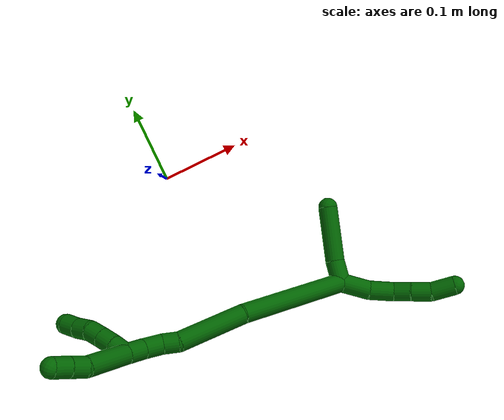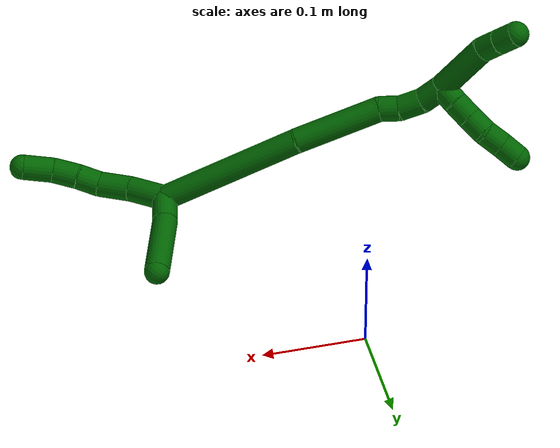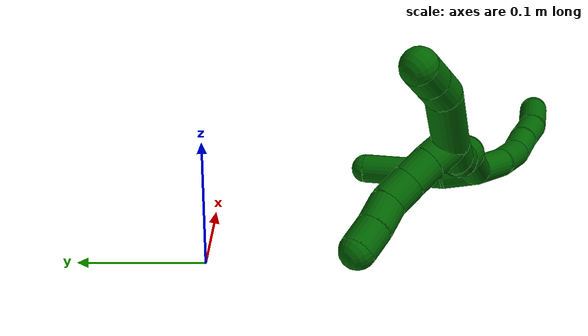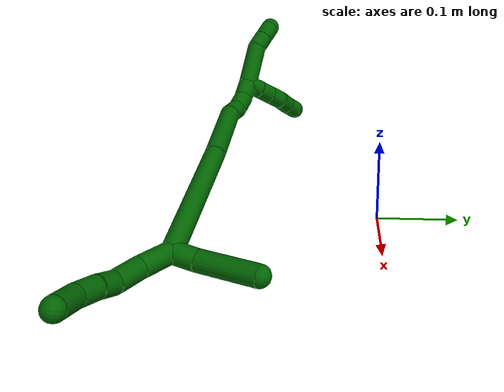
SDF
<sdf version="1.7">
 <world name="default">
  <model name="6">
   <static>0</static>
   <link name="6">
    <collision name="collision-cylinder-e_1_2_8">
     <pose>0.001867 0.008511 -0.016853 -2.67395 0.098553 -0.408341</pose>
     <geometry><cylinder><radius>0.0125</radius><length>0.037944</length></cylinder></geometry>
     <surface>
      <friction><ode><mu>1.16</mu><mu2>1.16</mu2><slip1>0</slip1><slip2>0</slip2></ode></friction>
      <contact><ode><kp>1e+06</kp><kd>1</kd><max_vel>0</max_vel><min_depth>0.001</min_depth></ode></contact>
     </surface>
    </collision>
    <visual name="visual-cylinder-e_1_2_8">
     <pose>0.001867 0.008511 -0.016853 -2.67395 0.098553 -0.408341</pose>
     <geometry><cylinder><radius>0.0125</radius><length>0.037944</length></cylinder></geometry>
     <material><ambient>0 0.392157 0.003922 1</ambient></material>
    </visual>
    <collision name="collision-cylinder-e_2_8_9">
     <pose>0.008663 0.023347 -0.048098 -2.72748 0.303882 -1.25974</pose>
     <geometry><cylinder><radius>0.0125</radius><length>0.032951</length></cylinder></geometry>
     <surface>
      <friction><ode><mu>1.16</mu><mu2>1.16</mu2><slip1>0</slip1><slip2>0</slip2></ode></friction>
      <contact><ode><kp>1e+06</kp><kd>1</kd><max_vel>0</max_vel><min_depth>0.001</min_depth></ode></contact>
     </surface>
    </collision>
    <visual name="visual-cylinder-e_2_8_9">
     <pose>0.008663 0.023347 -0.048098 -2.72748 0.303882 -1.25974</pose>
     <geometry><cylinder><radius>0.0125</radius><length>0.032951</length></cylinder></geometry>
     <material><ambient>0 0.392157 0.003922 1</ambient></material>
    </visual>
    <collision name="collision-cylinder-e_3_9_10">
     <pose>0.017639 0.030406 -0.072995 -3.07188 0.366765 -2.76992</pose>
     <geometry><cylinder><radius>0.0125</radius><length>0.022564</length></cylinder></geometry>
     <surface>
      <friction><ode><mu>1.16</mu><mu2>1.16</mu2><slip1>0</slip1><slip2>0</slip2></ode></friction>
      <contact><ode><kp>1e+06</kp><kd>1</kd><max_vel>0</max_vel><min_depth>0.001</min_depth></ode></contact>
     </surface>
    </collision>
    <visual name="visual-cylinder-e_3_9_10">
     <pose>0.017639 0.030406 -0.072995 -3.07188 0.366765 -2.76992</pose>
     <geometry><cylinder><radius>0.0125</radius><length>0.022564</length></cylinder></geometry>
     <material><ambient>0 0.392157 0.003922 1</ambient></material>
    </visual>
    <collision name="collision-cylinder-e_4_10_11">
     <pose>0.026232 0.033649 -0.095268 -2.93152 0.361364 -2.09474</pose>
     <geometry><cylinder><radius>0.0125</radius><length>0.025723</length></cylinder></geometry>
     <surface>
      <friction><ode><mu>1.16</mu><mu2>1.16</mu2><slip1>0</slip1><slip2>0</slip2></ode></friction>
      <contact><ode><kp>1e+06</kp><kd>1</kd><max_vel>0</max_vel><min_depth>0.001</min_depth></ode></contact>
     </surface>
    </collision>
    <visual name="visual-cylinder-e_4_10_11">
     <pose>0.026232 0.033649 -0.095268 -2.93152 0.361364 -2.09474</pose>
     <geometry><cylinder><radius>0.0125</radius><length>0.025723</length></cylinder></geometry>
     <material><ambient>0 0.392157 0.003922 1</ambient></material>
    </visual>
    <collision name="collision-cylinder-e_5_11_6">
     <pose>0.039982 0.037608 -0.119308 -3.02396 0.640028 -2.78989</pose>
     <geometry><cylinder><radius>0.0125</radius><length>0.030819</length></cylinder></geometry>
     <surface>
      <friction><ode><mu>1.16</mu><mu2>1.16</mu2><slip1>0</slip1><slip2>0</slip2></ode></friction>
      <contact><ode><kp>1e+06</kp><kd>1</kd><max_vel>0</max_vel><min_depth>0.001</min_depth></ode></contact>
     </surface>
    </collision>
    <visual name="visual-cylinder-e_5_11_6">
     <pose>0.039982 0.037608 -0.119308 -3.02396 0.640028 -2.78989</pose>
     <geometry><cylinder><radius>0.0125</radius><length>0.030819</length></cylinder></geometry>
     <material><ambient>0 0.392157 0.003922 1</ambient></material>
    </visual>
    <collision name="collision-cylinder-e_1_2_12">
     <pose>0.011595 -0.000614 0.00863 0.071016 0.929753 0.035628</pose>
     <geometry><cylinder><radius>0.0125</radius><length>0.028935</length></cylinder></geometry>
     <surface>
      <friction><ode><mu>1.16</mu><mu2>1.16</mu2><slip1>0</slip1><slip2>0</slip2></ode></friction>
      <contact><ode><kp>1e+06</kp><kd>1</kd><max_vel>0</max_vel><min_depth>0.001</min_depth></ode></contact>
     </surface>
    </collision>
    <visual name="visual-cylinder-e_1_2_12">
     <pose>0.011595 -0.000614 0.00863 0.071016 0.929753 0.035628</pose>
     <geometry><cylinder><radius>0.0125</radius><length>0.028935</length></cylinder></geometry>
     <material><ambient>0 0.392157 0.003922 1</ambient></material>
    </visual>
    <collision name="collision-cylinder-e_2_12_5">
     <pose>0.054421 -0.006918 0.033223 0.342449 1.07363 0.205088</pose>
     <geometry><cylinder><radius>0.0125</radius><length>0.071065</length></cylinder></geometry>
     <surface>
      <friction><ode><mu>1.16</mu><mu2>1.16</mu2><slip1>0</slip1><slip2>0</slip2></ode></friction>
      <contact><ode><kp>1e+06</kp><kd>1</kd><max_vel>0</max_vel><min_depth>0.001</min_depth></ode></contact>
     </surface>
    </collision>
    <visual name="visual-cylinder-e_2_12_5">
     <pose>0.054421 -0.006918 0.033223 0.342449 1.07363 0.205088</pose>
     <geometry><cylinder><radius>0.0125</radius><length>0.071065</length></cylinder></geometry>
     <material><ambient>0 0.392157 0.003922 1</ambient></material>
    </visual>
    <collision name="collision-cylinder-e_1_2_13">
     <pose>-0.039492 -0.049151 0.036458 0.932584 -0.573092 -0.294459</pose>
     <geometry><cylinder><radius>0.0125</radius><length>0.145666</length></cylinder></geometry>
     <surface>
      <friction><ode><mu>1.16</mu><mu2>1.16</mu2><slip1>0</slip1><slip2>0</slip2></ode></friction>
      <contact><ode><kp>1e+06</kp><kd>1</kd><max_vel>0</max_vel><min_depth>0.001</min_depth></ode></contact>
     </surface>
    </collision>
    <visual name="visual-cylinder-e_1_2_13">
     <pose>-0.039492 -0.049151 0.036458 0.932584 -0.573092 -0.294459</pose>
     <geometry><cylinder><radius>0.0125</radius><length>0.145666</length></cylinder></geometry>
     <material><ambient>0 0.392157 0.003922 1</ambient></material>
    </visual>
    <collision name="collision-cylinder-e_2_13_14">
     <pose>-0.107218 -0.121819 0.095438 0.807045 -0.714317 -0.315989</pose>
     <geometry><cylinder><radius>0.0125</radius><length>0.086197</length></cylinder></geometry>
     <surface>
      <friction><ode><mu>1.16</mu><mu2>1.16</mu2><slip1>0</slip1><slip2>0</slip2></ode></friction>
      <contact><ode><kp>1e+06</kp><kd>1</kd><max_vel>0</max_vel><min_depth>0.001</min_depth></ode></contact>
     </surface>
    </collision>
    <visual name="visual-cylinder-e_2_13_14">
     <pose>-0.107218 -0.121819 0.095438 0.807045 -0.714317 -0.315989</pose>
     <geometry><cylinder><radius>0.0125</radius><length>0.086197</length></cylinder></geometry>
     <material><ambient>0 0.392157 0.003922 1</ambient></material>
    </visual>
    <collision name="collision-cylinder-e_3_14_15">
     <pose>-0.140098 -0.149599 0.125724 0.501988 -0.483122 -0.126172</pose>
     <geometry><cylinder><radius>0.0125</radius><length>0.020003</length></cylinder></geometry>
     <surface>
      <friction><ode><mu>1.16</mu><mu2>1.16</mu2><slip1>0</slip1><slip2>0</slip2></ode></friction>
      <contact><ode><kp>1e+06</kp><kd>1</kd><max_vel>0</max_vel><min_depth>0.001</min_depth></ode></contact>
     </surface>
    </collision>
    <visual name="visual-cylinder-e_3_14_15">
     <pose>-0.140098 -0.149599 0.125724 0.501988 -0.483122 -0.126172</pose>
     <geometry><cylinder><radius>0.0125</radius><length>0.020003</length></cylinder></geometry>
     <material><ambient>0 0.392157 0.003922 1</ambient></material>
    </visual>
    <collision name="collision-cylinder-e_4_15_16">
     <pose>-0.150802 -0.161647 0.140209 0.858635 -0.532235 -0.248291</pose>
     <geometry><cylinder><radius>0.0125</radius><length>0.023874</length></cylinder></geometry>
     <surface>
      <friction><ode><mu>1.16</mu><mu2>1.16</mu2><slip1>0</slip1><slip2>0</slip2></ode></friction>
      <contact><ode><kp>1e+06</kp><kd>1</kd><max_vel>0</max_vel><min_depth>0.001</min_depth></ode></contact>
     </surface>
    </collision>
    <visual name="visual-cylinder-e_4_15_16">
     <pose>-0.150802 -0.161647 0.140209 0.858635 -0.532235 -0.248291</pose>
     <geometry><cylinder><radius>0.0125</radius><length>0.023874</length></cylinder></geometry>
     <material><ambient>0 0.392157 0.003922 1</ambient></material>
    </visual>
    <collision name="collision-cylinder-e_5_16_1">
     <pose>-0.16202 -0.179651 0.150944 1.19655 -0.439417 -0.302104</pose>
     <geometry><cylinder><radius>0.0125</radius><length>0.02426</length></cylinder></geometry>
     <surface>
      <friction><ode><mu>1.16</mu><mu2>1.16</mu2><slip1>0</slip1><slip2>0</slip2></ode></friction>
      <contact><ode><kp>1e+06</kp><kd>1</kd><max_vel>0</max_vel><min_depth>0.001</min_depth></ode></contact>
     </surface>
    </collision>
    <visual name="visual-cylinder-e_5_16_1">
     <pose>-0.16202 -0.179651 0.150944 1.19655 -0.439417 -0.302104</pose>
     <geometry><cylinder><radius>0.0125</radius><length>0.02426</length></cylinder></geometry>
     <material><ambient>0 0.392157 0.003922 1</ambient></material>
    </visual>
    <collision name="collision-cylinder-e_1_1_17">
     <pose>-0.17809 -0.216574 0.161016 1.34771 -0.379099 -0.304042</pose>
     <geometry><cylinder><radius>0.0125</radius><length>0.058955</length></cylinder></geometry>
     <surface>
      <friction><ode><mu>1.16</mu><mu2>1.16</mu2><slip1>0</slip1><slip2>0</slip2></ode></friction>
      <contact><ode><kp>1e+06</kp><kd>1</kd><max_vel>0</max_vel><min_depth>0.001</min_depth></ode></contact>
     </surface>
    </collision>
    <visual name="visual-cylinder-e_1_1_17">
     <pose>-0.17809 -0.216574 0.161016 1.34771 -0.379099 -0.304042</pose>
     <geometry><cylinder><radius>0.0125</radius><length>0.058955</length></cylinder></geometry>
     <material><ambient>0 0.392157 0.003922 1</ambient></material>
    </visual>
    <collision name="collision-cylinder-e_2_17_18">
     <pose>-0.191126 -0.252046 0.171756 1.08031 -0.210862 -0.126743</pose>
     <geometry><cylinder><radius>0.0125</radius><length>0.020326</length></cylinder></geometry>
     <surface>
      <friction><ode><mu>1.16</mu><mu2>1.16</mu2><slip1>0</slip1><slip2>0</slip2></ode></friction>
      <contact><ode><kp>1e+06</kp><kd>1</kd><max_vel>0</max_vel><min_depth>0.001</min_depth></ode></contact>
     </surface>
    </collision>
    <visual name="visual-cylinder-e_2_17_18">
     <pose>-0.191126 -0.252046 0.171756 1.08031 -0.210862 -0.126743</pose>
     <geometry><cylinder><radius>0.0125</radius><length>0.020326</length></cylinder></geometry>
     <material><ambient>0 0.392157 0.003922 1</ambient></material>
    </visual>
    <collision name="collision-cylinder-e_3_18_4">
     <pose>-0.195633 -0.269654 0.181284 1.06931 -0.231791 -0.137664</pose>
     <geometry><cylinder><radius>0.0125</radius><length>0.02072</length></cylinder></geometry>
     <surface>
      <friction><ode><mu>1.16</mu><mu2>1.16</mu2><slip1>0</slip1><slip2>0</slip2></ode></friction>
      <contact><ode><kp>1e+06</kp><kd>1</kd><max_vel>0</max_vel><min_depth>0.001</min_depth></ode></contact>
     </surface>
    </collision>
    <visual name="visual-cylinder-e_3_18_4">
     <pose>-0.195633 -0.269654 0.181284 1.06931 -0.231791 -0.137664</pose>
     <geometry><cylinder><radius>0.0125</radius><length>0.02072</length></cylinder></geometry>
     <material><ambient>0 0.392157 0.003922 1</ambient></material>
    </visual>
    <collision name="collision-cylinder-e_1_1_19">
     <pose>-0.165647 -0.188779 0.164779 -0.110422 0.15397 -0.008526</pose>
     <geometry><cylinder><radius>0.0125</radius><length>0.02</length></cylinder></geometry>
     <surface>
      <friction><ode><mu>1.16</mu><mu2>1.16</mu2><slip1>0</slip1><slip2>0</slip2></ode></friction>
      <contact><ode><kp>1e+06</kp><kd>1</kd><max_vel>0</max_vel><min_depth>0.001</min_depth></ode></contact>
     </surface>
    </collision>
    <visual name="visual-cylinder-e_1_1_19">
     <pose>-0.165647 -0.188779 0.164779 -0.110422 0.15397 -0.008526</pose>
     <geometry><cylinder><radius>0.0125</radius><length>0.02</length></cylinder></geometry>
     <material><ambient>0 0.392157 0.003922 1</ambient></material>
    </visual>
    <collision name="collision-cylinder-e_2_19_20">
     <pose>-0.163226 -0.186345 0.18447 -0.135543 0.088868 -0.006036</pose>
     <geometry><cylinder><radius>0.0125</radius><length>0.02</length></cylinder></geometry>
     <surface>
      <friction><ode><mu>1.16</mu><mu2>1.16</mu2><slip1>0</slip1><slip2>0</slip2></ode></friction>
      <contact><ode><kp>1e+06</kp><kd>1</kd><max_vel>0</max_vel><min_depth>0.001</min_depth></ode></contact>
     </surface>
    </collision>
    <visual name="visual-cylinder-e_2_19_20">
     <pose>-0.163226 -0.186345 0.18447 -0.135543 0.088868 -0.006036</pose>
     <geometry><cylinder><radius>0.0125</radius><length>0.02</length></cylinder></geometry>
     <material><ambient>0 0.392157 0.003922 1</ambient></material>
    </visual>
    <collision name="collision-cylinder-e_3_20_21">
     <pose>-0.161721 -0.183725 0.204238 -0.127991 0.061734 -0.003957</pose>
     <geometry><cylinder><radius>0.0125</radius><length>0.02</length></cylinder></geometry>
     <surface>
      <friction><ode><mu>1.16</mu><mu2>1.16</mu2><slip1>0</slip1><slip2>0</slip2></ode></friction>
      <contact><ode><kp>1e+06</kp><kd>1</kd><max_vel>0</max_vel><min_depth>0.001</min_depth></ode></contact>
     </surface>
    </collision>
    <visual name="visual-cylinder-e_3_20_21">
     <pose>-0.161721 -0.183725 0.204238 -0.127991 0.061734 -0.003957</pose>
     <geometry><cylinder><radius>0.0125</radius><length>0.02</length></cylinder></geometry>
     <material><ambient>0 0.392157 0.003922 1</ambient></material>
    </visual>
    <collision name="collision-cylinder-e_4_21_22">
     <pose>-0.163144 -0.180376 0.223705 -0.213538 -0.205415 0.022093</pose>
     <geometry><cylinder><radius>0.0125</radius><length>0.02</length></cylinder></geometry>
     <surface>
      <friction><ode><mu>1.16</mu><mu2>1.16</mu2><slip1>0</slip1><slip2>0</slip2></ode></friction>
      <contact><ode><kp>1e+06</kp><kd>1</kd><max_vel>0</max_vel><min_depth>0.001</min_depth></ode></contact>
     </surface>
    </collision>
    <visual name="visual-cylinder-e_4_21_22">
     <pose>-0.163144 -0.180376 0.223705 -0.213538 -0.205415 0.022093</pose>
     <geometry><cylinder><radius>0.0125</radius><length>0.02</length></cylinder></geometry>
     <material><ambient>0 0.392157 0.003922 1</ambient></material>
    </visual>
    <collision name="collision-cylinder-e_5_22_3">
     <pose>-0.166225 -0.176708 0.243089 -0.160865 -0.104338 0.008418</pose>
     <geometry><cylinder><radius>0.0125</radius><length>0.02</length></cylinder></geometry>
     <surface>
      <friction><ode><mu>1.16</mu><mu2>1.16</mu2><slip1>0</slip1><slip2>0</slip2></ode></friction>
      <contact><ode><kp>1e+06</kp><kd>1</kd><max_vel>0</max_vel><min_depth>0.001</min_depth></ode></contact>
     </surface>
    </collision>
    <visual name="visual-cylinder-e_5_22_3">
     <pose>-0.166225 -0.176708 0.243089 -0.160865 -0.104338 0.008418</pose>
     <geometry><cylinder><radius>0.0125</radius><length>0.02</length></cylinder></geometry>
     <material><ambient>0 0.392157 0.003922 1</ambient></material>
    </visual>
    <collision name="collision-sphere-3">
     <pose>-0.167267 -0.175115 0.252907 0 -0 0</pose>
     <geometry><sphere><radius>0.0125</radius></sphere></geometry>
     <surface>
      <friction><ode><mu>1.16</mu><mu2>1.16</mu2><slip1>0</slip1><slip2>0</slip2></ode></friction>
      <contact><ode><kp>1e+06</kp><kd>1</kd><max_vel>0</max_vel><min_depth>0.001</min_depth></ode></contact>
     </surface>
    </collision>
    <visual name="visual-sphere-3">
     <pose>-0.167267 -0.175115 0.252907 0 -0 0</pose>
     <geometry><sphere><radius>0.0125</radius></sphere></geometry>
     <material><ambient>0 0.392157 0.003922 1</ambient></material>
    </visual>
    <collision name="collision-sphere-22">
     <pose>-0.165184 -0.178301 0.233272 0 -0 0</pose>
     <geometry><sphere><radius>0.0125</radius></sphere></geometry>
     <surface>
      <friction><ode><mu>1.16</mu><mu2>1.16</mu2><slip1>0</slip1><slip2>0</slip2></ode></friction>
      <contact><ode><kp>1e+06</kp><kd>1</kd><max_vel>0</max_vel><min_depth>0.001</min_depth></ode></contact>
     </surface>
    </collision>
    <visual name="visual-sphere-22">
     <pose>-0.165184 -0.178301 0.233272 0 -0 0</pose>
     <geometry><sphere><radius>0.0125</radius></sphere></geometry>
     <material><ambient>0 0.392157 0.003922 1</ambient></material>
    </visual>
    <collision name="collision-sphere-21">
     <pose>-0.161104 -0.182451 0.214137 0 -0 0</pose>
     <geometry><sphere><radius>0.0125</radius></sphere></geometry>
     <surface>
      <friction><ode><mu>1.16</mu><mu2>1.16</mu2><slip1>0</slip1><slip2>0</slip2></ode></friction>
      <contact><ode><kp>1e+06</kp><kd>1</kd><max_vel>0</max_vel><min_depth>0.001</min_depth></ode></contact>
     </surface>
    </collision>
    <visual name="visual-sphere-21">
     <pose>-0.161104 -0.182451 0.214137 0 -0 0</pose>
     <geometry><sphere><radius>0.0125</radius></sphere></geometry>
     <material><ambient>0 0.392157 0.003922 1</ambient></material>
    </visual>
    <collision name="collision-sphere-20">
     <pose>-0.162338 -0.184999 0.194339 0 -0 0</pose>
     <geometry><sphere><radius>0.0125</radius></sphere></geometry>
     <surface>
      <friction><ode><mu>1.16</mu><mu2>1.16</mu2><slip1>0</slip1><slip2>0</slip2></ode></friction>
      <contact><ode><kp>1e+06</kp><kd>1</kd><max_vel>0</max_vel><min_depth>0.001</min_depth></ode></contact>
     </surface>
    </collision>
    <visual name="visual-sphere-20">
     <pose>-0.162338 -0.184999 0.194339 0 -0 0</pose>
     <geometry><sphere><radius>0.0125</radius></sphere></geometry>
     <material><ambient>0 0.392157 0.003922 1</ambient></material>
    </visual>
    <collision name="collision-sphere-19">
     <pose>-0.164113 -0.18769 0.1746 0 -0 0</pose>
     <geometry><sphere><radius>0.0125</radius></sphere></geometry>
     <surface>
      <friction><ode><mu>1.16</mu><mu2>1.16</mu2><slip1>0</slip1><slip2>0</slip2></ode></friction>
      <contact><ode><kp>1e+06</kp><kd>1</kd><max_vel>0</max_vel><min_depth>0.001</min_depth></ode></contact>
     </surface>
    </collision>
    <visual name="visual-sphere-19">
     <pose>-0.164113 -0.18769 0.1746 0 -0 0</pose>
     <geometry><sphere><radius>0.0125</radius></sphere></geometry>
     <material><ambient>0 0.392157 0.003922 1</ambient></material>
    </visual>
    <collision name="collision-sphere-6">
     <pose>0.049184 0.039059 -0.131582 0 -0 0</pose>
     <geometry><sphere><radius>0.0125</radius></sphere></geometry>
     <surface>
      <friction><ode><mu>1.16</mu><mu2>1.16</mu2><slip1>0</slip1><slip2>0</slip2></ode></friction>
      <contact><ode><kp>1e+06</kp><kd>1</kd><max_vel>0</max_vel><min_depth>0.001</min_depth></ode></contact>
     </surface>
    </collision>
    <visual name="visual-sphere-6">
     <pose>0.049184 0.039059 -0.131582 0 -0 0</pose>
     <geometry><sphere><radius>0.0125</radius></sphere></geometry>
     <material><ambient>0 0.392157 0.003922 1</ambient></material>
    </visual>
    <collision name="collision-sphere-11">
     <pose>0.030779 0.036158 -0.107034 0 -0 0</pose>
     <geometry><sphere><radius>0.0125</radius></sphere></geometry>
     <surface>
      <friction><ode><mu>1.16</mu><mu2>1.16</mu2><slip1>0</slip1><slip2>0</slip2></ode></friction>
      <contact><ode><kp>1e+06</kp><kd>1</kd><max_vel>0</max_vel><min_depth>0.001</min_depth></ode></contact>
     </surface>
    </collision>
    <visual name="visual-sphere-11">
     <pose>0.030779 0.036158 -0.107034 0 -0 0</pose>
     <geometry><sphere><radius>0.0125</radius></sphere></geometry>
     <material><ambient>0 0.392157 0.003922 1</ambient></material>
    </visual>
    <collision name="collision-sphere-10">
     <pose>0.021685 0.03114 -0.083501 0 -0 0</pose>
     <geometry><sphere><radius>0.0125</radius></sphere></geometry>
     <surface>
      <friction><ode><mu>1.16</mu><mu2>1.16</mu2><slip1>0</slip1><slip2>0</slip2></ode></friction>
      <contact><ode><kp>1e+06</kp><kd>1</kd><max_vel>0</max_vel><min_depth>0.001</min_depth></ode></contact>
     </surface>
    </collision>
    <visual name="visual-sphere-10">
     <pose>0.021685 0.03114 -0.083501 0 -0 0</pose>
     <geometry><sphere><radius>0.0125</radius></sphere></geometry>
     <material><ambient>0 0.392157 0.003922 1</ambient></material>
    </visual>
    <collision name="collision-sphere-9">
     <pose>0.013593 0.029673 -0.062489 0 -0 0</pose>
     <geometry><sphere><radius>0.0125</radius></sphere></geometry>
     <surface>
      <friction><ode><mu>1.16</mu><mu2>1.16</mu2><slip1>0</slip1><slip2>0</slip2></ode></friction>
      <contact><ode><kp>1e+06</kp><kd>1</kd><max_vel>0</max_vel><min_depth>0.001</min_depth></ode></contact>
     </surface>
    </collision>
    <visual name="visual-sphere-9">
     <pose>0.013593 0.029673 -0.062489 0 -0 0</pose>
     <geometry><sphere><radius>0.0125</radius></sphere></geometry>
     <material><ambient>0 0.392157 0.003922 1</ambient></material>
    </visual>
    <collision name="collision-sphere-2">
     <geometry><sphere><radius>0.0125</radius></sphere></geometry>
     <surface>
      <friction><ode><mu>1.16</mu><mu2>1.16</mu2><slip1>0</slip1><slip2>0</slip2></ode></friction>
      <contact><ode><kp>1e+06</kp><kd>1</kd><max_vel>0</max_vel><min_depth>0.001</min_depth></ode></contact>
     </surface>
    </collision>
    <visual name="visual-sphere-2">
     <geometry><sphere><radius>0.0125</radius></sphere></geometry>
     <material><ambient>0 0.392157 0.003922 1</ambient></material>
    </visual>
    <collision name="collision-sphere-8">
     <pose>0.003733 0.017022 -0.033706 0 -0 0</pose>
     <geometry><sphere><radius>0.0125</radius></sphere></geometry>
     <surface>
      <friction><ode><mu>1.16</mu><mu2>1.16</mu2><slip1>0</slip1><slip2>0</slip2></ode></friction>
      <contact><ode><kp>1e+06</kp><kd>1</kd><max_vel>0</max_vel><min_depth>0.001</min_depth></ode></contact>
     </surface>
    </collision>
    <visual name="visual-sphere-8">
     <pose>0.003733 0.017022 -0.033706 0 -0 0</pose>
     <geometry><sphere><radius>0.0125</radius></sphere></geometry>
     <material><ambient>0 0.392157 0.003922 1</ambient></material>
    </visual>
    <collision name="collision-sphere-12">
     <pose>0.02319 -0.001228 0.01726 0 -0 0</pose>
     <geometry><sphere><radius>0.0125</radius></sphere></geometry>
     <surface>
      <friction><ode><mu>1.16</mu><mu2>1.16</mu2><slip1>0</slip1><slip2>0</slip2></ode></friction>
      <contact><ode><kp>1e+06</kp><kd>1</kd><max_vel>0</max_vel><min_depth>0.001</min_depth></ode></contact>
     </surface>
    </collision>
    <visual name="visual-sphere-12">
     <pose>0.02319 -0.001228 0.01726 0 -0 0</pose>
     <geometry><sphere><radius>0.0125</radius></sphere></geometry>
     <material><ambient>0 0.392157 0.003922 1</ambient></material>
    </visual>
    <collision name="collision-sphere-5">
     <pose>0.085652 -0.012609 0.049186 0 -0 0</pose>
     <geometry><sphere><radius>0.0125</radius></sphere></geometry>
     <surface>
      <friction><ode><mu>1.16</mu><mu2>1.16</mu2><slip1>0</slip1><slip2>0</slip2></ode></friction>
      <contact><ode><kp>1e+06</kp><kd>1</kd><max_vel>0</max_vel><min_depth>0.001</min_depth></ode></contact>
     </surface>
    </collision>
    <visual name="visual-sphere-5">
     <pose>0.085652 -0.012609 0.049186 0 -0 0</pose>
     <geometry><sphere><radius>0.0125</radius></sphere></geometry>
     <material><ambient>0 0.392157 0.003922 1</ambient></material>
    </visual>
    <collision name="collision-sphere-13">
     <pose>-0.078985 -0.098301 0.072917 0 -0 0</pose>
     <geometry><sphere><radius>0.0125</radius></sphere></geometry>
     <surface>
      <friction><ode><mu>1.16</mu><mu2>1.16</mu2><slip1>0</slip1><slip2>0</slip2></ode></friction>
      <contact><ode><kp>1e+06</kp><kd>1</kd><max_vel>0</max_vel><min_depth>0.001</min_depth></ode></contact>
     </surface>
    </collision>
    <visual name="visual-sphere-13">
     <pose>-0.078985 -0.098301 0.072917 0 -0 0</pose>
     <geometry><sphere><radius>0.0125</radius></sphere></geometry>
     <material><ambient>0 0.392157 0.003922 1</ambient></material>
    </visual>
    <collision name="collision-sphere-14">
     <pose>-0.135452 -0.145337 0.11796 0 -0 0</pose>
     <geometry><sphere><radius>0.0125</radius></sphere></geometry>
     <surface>
      <friction><ode><mu>1.16</mu><mu2>1.16</mu2><slip1>0</slip1><slip2>0</slip2></ode></friction>
      <contact><ode><kp>1e+06</kp><kd>1</kd><max_vel>0</max_vel><min_depth>0.001</min_depth></ode></contact>
     </surface>
    </collision>
    <visual name="visual-sphere-14">
     <pose>-0.135452 -0.145337 0.11796 0 -0 0</pose>
     <geometry><sphere><radius>0.0125</radius></sphere></geometry>
     <material><ambient>0 0.392157 0.003922 1</ambient></material>
    </visual>
    <collision name="collision-sphere-15">
     <pose>-0.144745 -0.153861 0.133488 0 -0 0</pose>
     <geometry><sphere><radius>0.0125</radius></sphere></geometry>
     <surface>
      <friction><ode><mu>1.16</mu><mu2>1.16</mu2><slip1>0</slip1><slip2>0</slip2></ode></friction>
      <contact><ode><kp>1e+06</kp><kd>1</kd><max_vel>0</max_vel><min_depth>0.001</min_depth></ode></contact>
     </surface>
    </collision>
    <visual name="visual-sphere-15">
     <pose>-0.144745 -0.153861 0.133488 0 -0 0</pose>
     <geometry><sphere><radius>0.0125</radius></sphere></geometry>
     <material><ambient>0 0.392157 0.003922 1</ambient></material>
    </visual>
    <collision name="collision-sphere-16">
     <pose>-0.15686 -0.169433 0.146931 0 -0 0</pose>
     <geometry><sphere><radius>0.0125</radius></sphere></geometry>
     <surface>
      <friction><ode><mu>1.16</mu><mu2>1.16</mu2><slip1>0</slip1><slip2>0</slip2></ode></friction>
      <contact><ode><kp>1e+06</kp><kd>1</kd><max_vel>0</max_vel><min_depth>0.001</min_depth></ode></contact>
     </surface>
    </collision>
    <visual name="visual-sphere-16">
     <pose>-0.15686 -0.169433 0.146931 0 -0 0</pose>
     <geometry><sphere><radius>0.0125</radius></sphere></geometry>
     <material><ambient>0 0.392157 0.003922 1</ambient></material>
    </visual>
    <collision name="collision-sphere-1">
     <pose>-0.16718 -0.189868 0.154957 0 -0 0</pose>
     <geometry><sphere><radius>0.0125</radius></sphere></geometry>
     <surface>
      <friction><ode><mu>1.16</mu><mu2>1.16</mu2><slip1>0</slip1><slip2>0</slip2></ode></friction>
      <contact><ode><kp>1e+06</kp><kd>1</kd><max_vel>0</max_vel><min_depth>0.001</min_depth></ode></contact>
     </surface>
    </collision>
    <visual name="visual-sphere-1">
     <pose>-0.16718 -0.189868 0.154957 0 -0 0</pose>
     <geometry><sphere><radius>0.0125</radius></sphere></geometry>
     <material><ambient>0 0.392157 0.003922 1</ambient></material>
    </visual>
    <collision name="collision-sphere-18">
     <pose>-0.193253 -0.260812 0.176437 0 -0 0</pose>
     <geometry><sphere><radius>0.0125</radius></sphere></geometry>
     <surface>
      <friction><ode><mu>1.16</mu><mu2>1.16</mu2><slip1>0</slip1><slip2>0</slip2></ode></friction>
      <contact><ode><kp>1e+06</kp><kd>1</kd><max_vel>0</max_vel><min_depth>0.001</min_depth></ode></contact>
     </surface>
    </collision>
    <visual name="visual-sphere-18">
     <pose>-0.193253 -0.260812 0.176437 0 -0 0</pose>
     <geometry><sphere><radius>0.0125</radius></sphere></geometry>
     <material><ambient>0 0.392157 0.003922 1</ambient></material>
    </visual>
    <collision name="collision-sphere-17">
     <pose>-0.188999 -0.24328 0.167075 0 -0 0</pose>
     <geometry><sphere><radius>0.0125</radius></sphere></geometry>
     <surface>
      <friction><ode><mu>1.16</mu><mu2>1.16</mu2><slip1>0</slip1><slip2>0</slip2></ode></friction>
      <contact><ode><kp>1e+06</kp><kd>1</kd><max_vel>0</max_vel><min_depth>0.001</min_depth></ode></contact>
     </surface>
    </collision>
    <visual name="visual-sphere-17">
     <pose>-0.188999 -0.24328 0.167075 0 -0 0</pose>
     <geometry><sphere><radius>0.0125</radius></sphere></geometry>
     <material><ambient>0 0.392157 0.003922 1</ambient></material>
    </visual>
    <collision name="collision-sphere-4">
     <pose>-0.198013 -0.278495 0.186131 0 -0 0</pose>
     <geometry><sphere><radius>0.0125</radius></sphere></geometry>
     <surface>
      <friction><ode><mu>1.16</mu><mu2>1.16</mu2><slip1>0</slip1><slip2>0</slip2></ode></friction>
      <contact><ode><kp>1e+06</kp><kd>1</kd><max_vel>0</max_vel><min_depth>0.001</min_depth></ode></contact>
     </surface>
    </collision>
    <visual name="visual-sphere-4">
     <pose>-0.198013 -0.278495 0.186131 0 -0 0</pose>
     <geometry><sphere><radius>0.0125</radius></sphere></geometry>
     <material><ambient>0 0.392157 0.003922 1</ambient></material>
    </visual>
    <inertial>
     <pose>-0.071067 -0.089831 0.070425 0 -0 0</pose>
     <mass>0.75</mass>
     <inertia>
      <ixx>0.000207</ixx>
      <ixy>0</ixy>
      <ixz>0</ixz>
      <iyy>0.000174</iyy>
      <iyz>0</iyz>
      <izz>0.000401</izz>
     </inertia>
    </inertial>
   </link>
   <pose>0.145355 -0.222196 0.020995 -1.95187 0.034049 0.749139</pose>
  </model>
 </world>
</sdf>
